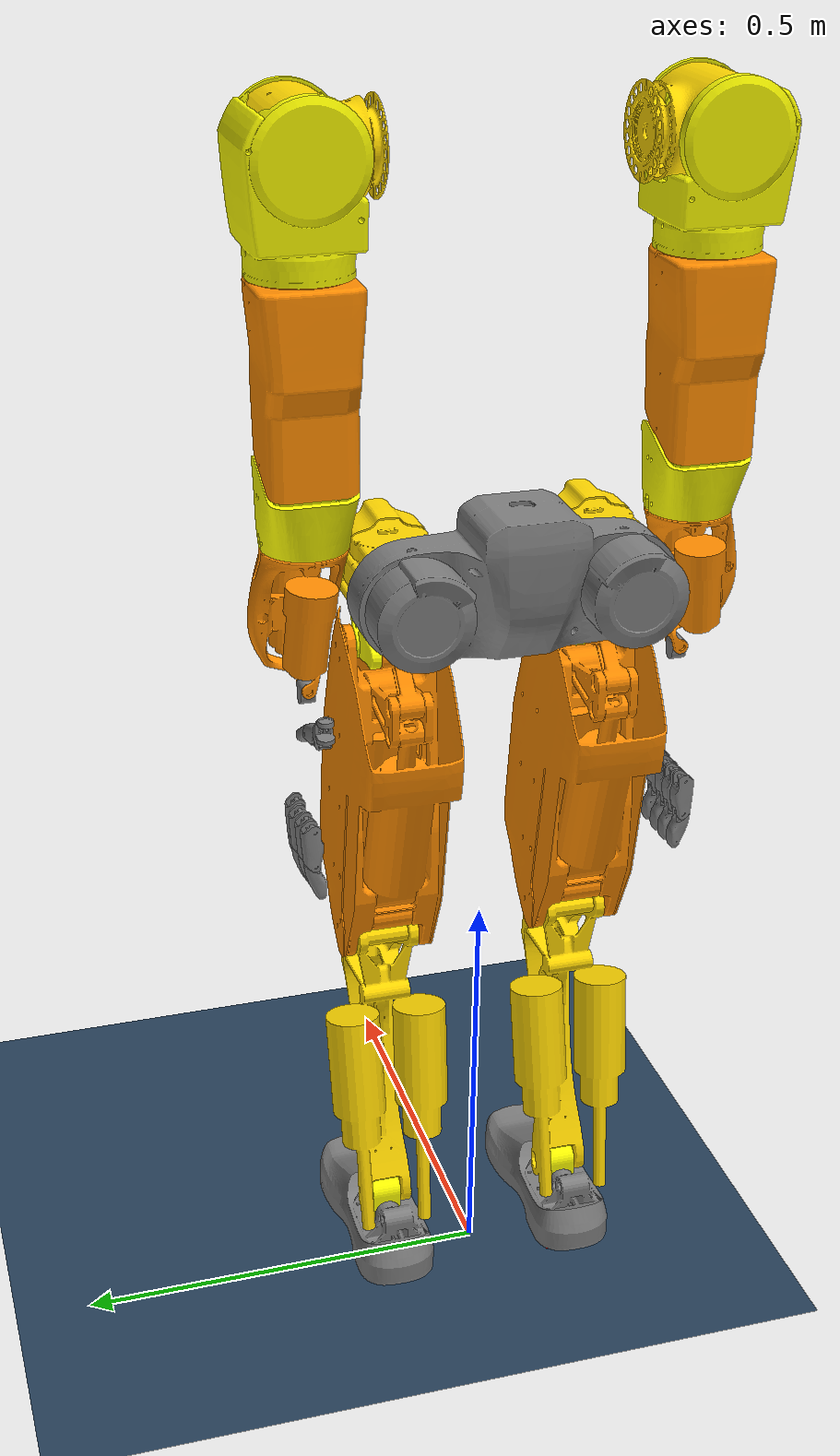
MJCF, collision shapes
<mujoco model="1230-URDF-version-fixed">
    <compiler angle="radian" meshdir="meshes/" eulerseq="zyx"/>
    <option timestep='0.001' iterations='50' solver='Newton' gravity='0 0 -9.81' integrator = 'RK4'>
    </option>
    <size njmax="500" nconmax="100" />

    <visual>
        <quality shadowsize='4096'/>
        <map znear='0.05'/>
    </visual>

    <default>
        <joint limited='true'/>
        <motor ctrllimited='true'/>
        <geom  condim='3' contype="1" conaffinity="15" solref='0.02 1' friction='0.9 0.9 0.9'/>
        <equality solref='0.02 1'/>
        <default class='visualgeom'>
            <geom material='visualgeom' condim='3' contype='1' conaffinity='15'/>
        </default>
        <default class='visualgeom2'>
            <geom material='visualgeom2' condim='3' contype='1' conaffinity='15'/>
        </default>
        <default class='obstacle'>
            <geom material='obstacle' condim='3' contype='1' conaffinity='15'/>
        </default>
        <default class='contact'>
            <geom material='contact' condim='3' contype='1' conaffinity='15'/>
        </default>

        <default class='neck_joint_param'>
            <joint  damping="0.01" frictionloss="0.01" armature="0.01"/>
        </default>

        <default class='waist_joint_param'>
            <joint  damping="2" frictionloss="2" armature="0.01"/>
        </default>

        <default class='leg_joint_param'>
            <joint  damping="0.01" frictionloss="0.01" armature="0.01"/>
        </default>

        <default class='arm_joint_param'>
            <joint  damping="1" frictionloss="1" armature="0.01"/>
        </default>

        <default class='finger_joint_param'>
            <joint  damping="0.00" frictionloss="0.00" armature="0.01"/>
        </default>
    </default>

    <asset>
        <texture type="skybox" builtin="gradient" rgb1="0.3 0.5 0.7" rgb2="0 0 0" width="512" height="512"/>
        <texture name="texplane" type="2d" builtin="checker" rgb1=".2 .3 .4" rgb2=".1 0.15 0.2"
            width="512" height="512" mark="cross" markrgb=".8 .8 .8"/>
        <texture name="texplane2" type="2d" builtin="checker" rgb1="1 0.3137 0.1843" rgb2="0.0 0.30196 0.38039"
            width="512" height="512" mark="cross" markrgb=".8 .8 .8"/>

        <material name="matplane" reflectance="0." texture="texplane" texrepeat="1 1" texuniform="true"/>
        <material name="matplane2" reflectance="0.1" texture="texplane2" texrepeat="1 1" texuniform="true"/>

        <material name='obstacle'  rgba='0.9 0.6 0.2 1'/>
        <material name='visualgeom'  rgba='0.5 0.9 0.2 1'/>
        <material name='visualgeom2'  rgba='0.5 0.9 0.2 1'/>
        <material name='contact'  rgba='0.5 0.9 0.2 1'/>

        <mesh name="base_link" file="base_link.STL" />
        <mesh name="left_hip_roll" file="left_hip_roll.STL" />
        <mesh name="left_hip_yaw" file="left_hip_yaw.STL" />
        <mesh name="left_hip_pitch" file="left_hip_pitch.STL" />
        <mesh name="left_knee_pitch" file="left_knee_pitch.STL" />
        <mesh name="left_ankle_pitch" file="left_ankle_pitch.STL" />
        <mesh name="left_ankle_roll" file="left_ankle_roll.STL" />
        <mesh name="right_hip_roll" file="right_hip_roll.STL" />
        <mesh name="right_hip_yaw" file="right_hip_yaw.STL" />
        <mesh name="right_hip_pitch" file="right_hip_pitch.STL" />
        <mesh name="right_knee_pitch" file="right_knee_pitch.STL" />
        <mesh name="right_ankle_pitch" file="right_ankle_pitch.STL" />
        <mesh name="right_ankle_roll" file="right_ankle_roll.STL" />
        <mesh name="waist_roll" file="waist_roll.STL" />
        <mesh name="waist_yaw" file="waist_yaw.STL" />
        <mesh name="head_yaw" file="head_yaw.STL" />
        <mesh name="head_pitch" file="head_pitch.STL" />
        <mesh name="left_shoulder_pitch" file="left_shoulder_pitch.STL" />
        <mesh name="left_shoulder_roll" file="left_shoulder_roll.STL" />
        <mesh name="left_shoulder_yaw" file="left_shoulder_yaw.STL" />
        <mesh name="left_elbow_pitch" file="left_elbow_pitch.STL" />
        <mesh name="left_elbow_yaw" file="left_elbow_yaw.STL" />
        <mesh name="left_wrist_pitch" file="left_wrist_pitch.STL" />
        <mesh name="left_wrist_yaw" file="left_wrist_yaw.STL" />
        <mesh name="left_thumb_1_roll" file="left_thumb_1_roll.STL" />
        <mesh name="left_thumb_2_pitch" file="left_thumb_2_pitch.STL" />
        <mesh name="left_thumb_3_pitch" file="left_thumb_3_pitch.STL" />
        <mesh name="left_index_finger_2_pitch" file="left_index_finger_2_pitch.STL" />
        <mesh name="left_index_finger_3_pitch" file="left_index_finger_3_pitch.STL" />
        <mesh name="left_middle_finger_2_pitch" file="left_middle_finger_2_pitch.STL" />
        <mesh name="left_middle_finger_3_pitch" file="left_middle_finger_3_pitch.STL" />
        <mesh name="left_ring_finger_2_pitch" file="left_ring_finger_2_pitch.STL" />
        <mesh name="left_ring_finger_3_pitch" file="left_ring_finger_3_pitch.STL" />
        <mesh name="left_little_finger_2_pitch" file="left_little_finger_2_pitch.STL" />
        <mesh name="left_little_finger_3_pitch" file="left_little_finger_3_pitch.STL" />
        <mesh name="right_shoulder_pitch" file="right_shoulder_pitch.STL" />
        <mesh name="right_shoulder_roll" file="right_shoulder_roll.STL" />
        <mesh name="right_shoulder_yaw" file="right_shoulder_yaw.STL" />
        <mesh name="right_elbow_pitch" file="right_elbow_pitch.STL" />
        <mesh name="right_elbow_yaw" file="right_elbow_yaw.STL" />
        <mesh name="right_wrist_pitch" file="right_wrist_pitch.STL" />
        <mesh name="right_wrist_yaw" file="right_wrist_yaw.STL" />
        <mesh name="right_thumb_1_roll" file="right_thumb_1_roll.STL" />
        <mesh name="right_thumb_2_pitch" file="right_thumb_2_pitch.STL" />
        <mesh name="right_thumb_3_pitch" file="right_thumb_3_pitch.STL" />
        <mesh name="right_index_finger_2_pitch" file="right_index_finger_2_pitch.STL" />
        <mesh name="right_index_finger_3_pitch" file="right_index_finger_3_pitch.STL" />
        <mesh name="right_middle_finger_2_pitch" file="right_middle_finger_2_pitch.STL" />
        <mesh name="right_middle_finger_3_pitch" file="right_middle_finger_3_pitch.STL" />
        <mesh name="right_ring_finger_2_pitch" file="right_ring_finger_2_pitch.STL" />
        <mesh name="right_ring_finger_3_pitch" file="right_ring_finger_3_pitch.STL" />
        <mesh name="right_little_finger_2_pitch" file="right_little_finger_2_pitch.STL" />
        <mesh name="right_little_finger_3_pitch" file="right_little_finger_3_pitch.STL" />
        <material name="white" rgba="1 1 1 1" />
        <material name="red" rgba="1 0 0 1" />
		<material name="gold" rgba="1 0.843 0 1" />
		<material name="orange" rgba="1 0.550 0 1" />
		<material name="blue" rgba="0 0 1 1" />
        <material name="grey" rgba="0.5 0.5 0.5 1" />
        <material name="yellow" rgba="1 1 0 1" />
        <material name="pink" rgba="0 1 1 1" />
        <texture name="skybox" type="skybox" builtin="gradient" rgb1="0.2 0.3 0.4" rgb2="0 0 0" width="1000" height="1000" mark="random" random="0.001" markrgb="1 1 1"/>
        <texture type="2d" name="groundplane" builtin="checker" mark="edge" rgb1="0.2 0.3 0.4" rgb2="0.1 0.2 0.3" markrgb="0.8 0.8 0.8" width="1000" height="1000"/>
        <material name="groundplane" texture="groundplane" texuniform="true" texrepeat="5 5" reflectance="0.2"/>

        <hfield name='hf0' nrow='200' ncol='200' size="10 5 0.2 .1"/>
    </asset>
    <worldbody>
        <!-- Add a light-->
        <light pos="0 0 10" dir="0 0 -1" directional="true"/>
        <light name="spotlight" mode="targetbodycom" target="Body" pos="0 -1 2"/>
        <!-- Add a floor-->
        <geom name="ground" type="plane" size="0 0 1" pos="0.001 0 0" quat="1 0 0 0" material="groundplane" condim="1" conaffinity='15'/>
        <!-- Handwrite 控制身体系原点离地的高度 1.02 -->
        <body name="Body" pos="0 0 1.00">
            <camera name="track" pos="0 -3 1" zaxis="0 -1 0.5" mode="track"/>
            <!-- Handwrite 需要修改-->
            <inertial pos="-0.092453 0.000001 -0.034538" mass="5.486" diaginertia="0.05914637 0.010903037 0.055941393"/>
            <geom type="mesh" group="1" mesh="base_link" material="grey" class="visualgeom"/>
            <site name="imu" size="0.01" pos="0 0 0"/>
            <freejoint/>
            <body name="left_hip_roll" pos="0 0.1175 -0.05">
                <inertial pos="-0.00547173 -3.64e-05 0.00444817" quat="0.593256 0.380985 0.369431 0.605326" mass="1.819" diaginertia="0.00259004 0.00250463 0.00221111" />
                <joint name="left_hip_roll" pos="0 0 0" axis="1 0 0" limited="true" range="-0.175 1.047" />
                <geom type="mesh"  contype="1" conaffinity="0" group="1" density="0" mesh="left_hip_roll" material="gold"  class="visualgeom" />
                <body name="left_hip_yaw" pos="0 0 0">
                    <inertial pos="-0.0124294 0 -0.063503" quat="0.368819 0.367925 -0.604137 0.603011" mass="0.663" diaginertia="0.00088487 0.000649271 0.00057433" />
                    <joint name="left_hip_yaw" pos="0 0 0" axis="0 0 1" limited="true" range="-1.047 1.047" />
                    <geom type="mesh" contype="1" conaffinity="0" group="1" density="0" mesh="left_hip_yaw" material="yellow" class="visualgeom"/>
                    <body name="left_hip_pitch" pos="0 0 -0.077">
                        <inertial pos="0.00518874 -0.00019093 -0.200708" quat="0.704693 -0.0534206 -0.0534064 0.70548" mass="10.4965" diaginertia="0.127525 0.106938 0.0370947" />
                        <joint name="left_hip_pitch" pos="0 0 0" axis="0 1 0" limited="true" range="-1.513 0.399" />
                        <geom type="mesh" contype="1" conaffinity="0" group="1" density="0" mesh="left_hip_pitch" material="orange" class="visualgeom"/>
                        <body name="left_knee_pitch" pos="0 0 -0.385">
                            <inertial pos="-0.00412565 0 -0.177064" quat="0.996414 7.50101e-06 0.0846168 7.44118e-07" mass="4.52604" diaginertia="0.0419559 0.0396506 0.0101455" />
                            <joint name="left_knee_pitch" pos="0 0 0" axis="0 1 0" limited="true" range="0 2.138" />
                            <geom type="mesh" contype="1" conaffinity="0" group="1" density="0" mesh="left_knee_pitch" material="gold" class="visualgeom"/>
                            <body name="left_ankle_pitch" pos="0 0 -0.385">
                                <inertial pos="0 0 -0.0115" mass="0.21031" diaginertia="7.78e-05 7.78e-05 4.68e-05" />
                                <joint name="left_ankle_pitch" pos="0 0 0" axis="0 1 0" limited="true" range="-1.047 0.349" />
                                <geom type="mesh" contype="1" conaffinity="0" group="1" density="0" mesh="left_ankle_pitch" material="yellow" class="visualgeom"/>
                                <body name="left_ankle_roll" pos="0 0 -0.023">
                                    <inertial pos="0.0149819 -2.21e-06 -0.0297583" quat="-4.9765e-05 0.74536 -6.84033e-08 0.666662" mass="1.25" diaginertia="0.00643686 0.00598442 0.00114085" />
                                    <joint name="left_ankle_roll" pos="0 0 0" axis="1 0 0" limited="true" range="-0.436 0.436" />
                                    <geom type="mesh" contype="1" conaffinity="0" group="1" density="0" mesh="left_ankle_roll" material="grey" class="contact"/>
                                    <geom size="0.005" pos="-0.075 0.035 -0.056" material="red" />
                                    <geom size="0.005" pos="-0.075 -0.035 -0.056" material="red" />
                                    <geom size="0.005" pos="0.16 0.034 -0.056" material="red" />
                                    <geom size="0.005" pos="0.16 -0.034 -0.056" material="red" />
                                </body>
                            </body>
                        </body>
                    </body>
                </body>
            </body>
            <body name="right_hip_roll" pos="0 -0.1175 -0.05">
                <inertial pos="-0.00547173 -3.64e-05 0.00444817" quat="0.593256 0.380985 0.369431 0.605326" mass="1.819" diaginertia="0.00259004 0.00250463 0.00221111" />
                <joint name="right_hip_roll" pos="0 0 0" axis="-1 0 0" limited="true" range="-0.175 1.047" />
                <geom type="mesh" contype="1" conaffinity="0" group="1" density="0" mesh="right_hip_roll" material="gold" class="visualgeom" />
                <body name="right_hip_yaw" pos="0 0 0">
                    <inertial pos="-0.0124294 0 -0.063503" quat="0.368819 0.367925 -0.604137 0.603011" mass="0.663" diaginertia="0.00088487 0.000649271 0.00057433" />
                    <joint name="right_hip_yaw" pos="0 0 0" axis="0 0 -1" limited="true" range="-1.047 1.047" />
                    <geom type="mesh" contype="1" conaffinity="0" group="1" density="0" mesh="right_hip_yaw" material="yellow" class="visualgeom"/>
                    <body name="right_hip_pitch" pos="0 0 -0.077">
                        <inertial pos="0.0051885 -0.00018849 -0.200716" quat="0.704704 -0.0533931 -0.0534117 0.70547" mass="10.4965" diaginertia="0.127531 0.106946 0.0370947" />
                        <joint name="right_hip_pitch" pos="0 0 0" axis="0 1 0" limited="true" range="-1.513 0.399" />
                        <geom type="mesh" contype="1" conaffinity="0" group="1" density="0" mesh="right_hip_pitch" material="orange" class="visualgeom"/>
                        <body name="right_knee_pitch" pos="0 0 -0.385">
                            <inertial pos="-0.00412565 0 -0.177064" quat="0.996414 7.50101e-06 0.0846168 7.44118e-07" mass="4.52604" diaginertia="0.0419559 0.0396506 0.0101455" />
                            <joint name="right_knee_pitch" pos="0 0 0" axis="0 1 0" limited="true" range="0 2.138" />
                            <geom type="mesh" contype="1" conaffinity="0" group="1" density="0" mesh="right_knee_pitch" material="gold" class="visualgeom"/>
                            <body name="right_ankle_pitch" pos="0 0 -0.385">
                                <inertial pos="0 0 -0.0115" mass="0.21031" diaginertia="7.78e-05 7.78e-05 4.68e-05" />
                                <joint name="right_ankle_pitch" pos="0 0 0" axis="0 1 0" limited="true" range="-1.047 0.349" />
                                <geom type="mesh" contype="1" conaffinity="0" group="1" density="0" mesh="right_ankle_pitch" material="yellow" class="visualgeom"/>
                                <body name="right_ankle_roll" pos="0 0 -0.023">
                                    <inertial pos="0.0237252 -2.54e-06 -0.0319424" quat="-4.9765e-05 0.74536 -6.84033e-08 0.666662" mass="1.25" diaginertia="0.00643686 0.00598442 0.00114085" />
                                    <joint name="right_ankle_roll" pos="0 0 0" axis="-1 0 0" limited="true" range="-0.436 0.436" />
                                    <geom type="mesh" contype="1" conaffinity="0" group="1" density="0" mesh="right_ankle_roll" material="grey" class="contact"/>
                                    <geom size="0.005" pos="-0.075 0.035 -0.056" material="red" />
                                    <geom size="0.005" pos="-0.075 -0.035 -0.056" material="red" />
                                    <geom size="0.005" pos="0.16 0.034 -0.056" material="red" />
                                    <geom size="0.005" pos="0.16 -0.034 -0.056" material="red" />
                                </body>
                            </body>
                        </body>
                    </body>
                </body>
            </body>
            <body name="waist_roll" pos="0 0 0">
                <inertial pos="-0.00347422 5.39e-06 -0.00848908" quat="0.362834 0.615106 0.586472 0.382159" mass="1.815" diaginertia="0.00219244 0.00219057 0.00192011" />
                <joint name="waist_roll" pos="0 0 0" axis="1 0 0" limited="true" range="-0.175 0.175" />
                <geom type="mesh" group="1" mesh="waist_roll" material="gold" class="visualgeom" contype="0" conaffinity="0"/>
                <body name="waist_yaw" pos="0 0 0.035">
                    <inertial pos="-0.0265499 -8.96e-06 0.271066" quat="0.999934 8.16316e-05 0.0114768 -8.35052e-05" mass="16.823" diaginertia="0.415255 0.36168 0.189103" />
                    <joint name="waist_yaw" pos="0 0 0" axis="0 0 1" limited="true" range="-0.785 0.785" />
                    <geom type="mesh" group="1" mesh="waist_yaw" material="orange" class="visualgeom" contype="0" conaffinity="0"/>
                    <body name="head_yaw" pos="-0.02 0 0.4505">
                        <inertial pos="0 0.00403628 0.0451782" quat="0.995796 -0.091604 0 0" mass="0.43221" diaginertia="0.00025942 0.000247335 0.000206025" />
                        <joint name="head_yaw" pos="0 0 0" axis="0 0 -1" limited="true" range="-0.785 0.785" />
                        <geom type="mesh" group="1" mesh="head_yaw" material="grey" class="visualgeom" contype="0" conaffinity="0"/>
                        <body name="head_pitch" pos="0 0 0.0485">
                            <inertial pos="0.0359011 -0.00097223 0.0895106" quat="0.451413 0.483607 0.680289 0.315528" mass="1.19339" diaginertia="0.00915494 0.00891947 0.00686874" />
                            <joint name="head_pitch" pos="0 0 0" axis="0 1 0" limited="true" range="-0.262 0.523" />
                            <geom type="mesh" group="1" mesh="head_pitch" material="gold" class="visualgeom" contype="0" conaffinity="0"/>
                        </body>
                    </body>
                    <body name="left_shoulder_pitch" pos="-0.02 0.1395 0.369">
                        <inertial pos="-0.00145511 0.0689072 0.00149868" quat="0.451645 0.524366 -0.519309 0.501374" mass="1.629" diaginertia="0.00229144 0.00218527 0.00182021" />
                        <joint name="left_shoulder_pitch" pos="0 0 0" axis="0 -1 0" limited="true" range="-1.58 3.16" />
                        <geom type="mesh" group="1" mesh="left_shoulder_pitch" material="gold" class="visualgeom"/>
                        <body name="left_shoulder_roll" pos="0 0.077 0">
                            <inertial pos="0.00260113 0.00244954 -0.0643519" quat="0.74971 -0.0579844 0.137232 0.64478" mass="1.587" diaginertia="0.00414794 0.00377513 0.00290483" />
                            <joint name="left_shoulder_roll" pos="0 0 0" axis="1 0 0" limited="true" range="0 1.58" />
                            <geom type="mesh" group="1" mesh="left_shoulder_roll" material="yellow" class="visualgeom"/>
                            <body name="left_shoulder_yaw" pos="0 0 -0.1185">
                                <inertial pos="-0.00603131 0 -0.0876439" quat="0.999102 -3.18364e-05 0.0423598 -0.00128592" mass="1.25" diaginertia="0.0042983 0.00425529 0.00158429" />
                                <joint name="left_shoulder_yaw" pos="0 0 0" axis="0 0 1" limited="true" range="-1.58 1.58" />
                                <geom type="mesh" group="1" mesh="left_shoulder_yaw" material="orange" class="visualgeom"/>
                                <body name="left_elbow_pitch" pos="0.007 0 -0.2105">
                                    <inertial pos="-0.01558 4.95e-06 -0.0364362" quat="0.999049 6.82104e-06 0.0435989 0.000560657" mass="1.064" diaginertia="0.0012488 0.00114059 0.000872" />
                                    <joint name="left_elbow_pitch" pos="0 0 0" axis="0 -1 0" limited="true" range="0 2.27" />
                                    <geom type="mesh" group="1" mesh="left_elbow_pitch" material="yellow" class="visualgeom"/>
                                    <body name="left_elbow_yaw" pos="-0.019 0 -0.0779">
                                        <inertial pos="0.0034803 0.00540729 -0.0629133" quat="0.703092 0.0460981 -0.0225819 0.709244" mass="0.969" diaginertia="0.00225921 0.00161309 0.00130656" />
                                        <joint name="left_elbow_yaw" pos="0 0 0" axis="0 0 1" limited="true" range="-2.1 2.1" />
                                        <geom type="mesh" group="1" mesh="left_elbow_yaw" material="orange" class="visualgeom"/>
                                        <body name="left_wrist_pitch" pos="0.004 0 -0.158">
                                            <inertial pos="0 0 -0.00435545" quat="0.707107 0 0 0.707107" mass="0.023" diaginertia="1.82e-06 1.6e-06 1.22e-06" />
                                            <joint name="left_wrist_pitch" pos="0 0 0" axis="1 0 0" limited="true" range="-1.31 0.96" />
                                            <geom type="mesh" group="1" mesh="left_wrist_pitch" material="grey" class="visualgeom"/>
                                            <body name="left_wrist_yaw" pos="0 0 -0.01">
                                                <inertial pos="0.00167328 -0.00282893 -0.0846354" quat="0.736718 0.0273065 -0.025875 0.675153" mass="0.847" diaginertia="0.00227019 0.00195183 0.00074904" />
                                                <joint name="left_wrist_yaw" pos="0 0 0" axis="0 -1 0" limited="true" range="-0.7 0.35" />
                                                <geom type="mesh" group="1" mesh="left_wrist_yaw" material="gold" class="visualgeom" contype="0" conaffinity="0"/>
                                                <body name="left_thumb_1_roll" pos="0.035543 -0.030472 -0.066011" quat="-2.59734e-06 -0.707105 -0.707108 -2.59735e-06">
                                                    <inertial pos="-0.00037223 0.0112416 0.00678232" quat="0.95663 -0.290369 -0.0107728 -0.020699" mass="0.025" diaginertia="5.09197e-06 4.24361e-06 2.51442e-06" />
                                                    <geom type="mesh" group="1" mesh="left_thumb_1_roll" material="grey" class="visualgeom"/>
                                                    <body name="left_thumb_2_pitch" pos="0 0.024 0.01915" quat="0.499998 -0.5 0.500002 -0.5">
                                                        <inertial pos="-0.0195297 -0.00665716 0" quat="0.392605 0.392605 0.5881 0.5881" mass="0.031" diaginertia="6.73107e-06 6.6e-06 2.43893e-06" />
                                                        <geom type="mesh" group="1" mesh="left_thumb_2_pitch" material="grey" class="visualgeom"/>
                                                        <body name="left_thumb_3_pitch" pos="-0.039467 -0.014365 0">
                                                            <inertial pos="-0.0226518 -0.0106249 0" quat="0.347427 0.347427 0.615869 0.615869" mass="0.0226" diaginertia="4.63474e-06 4.55e-06 1.06526e-06" />
                                                            <geom type="mesh" group="1" mesh="left_thumb_3_pitch" material="grey" class="visualgeom"/>
                                                        </body>
                                                    </body>
                                                </body>
                                                <body name="left_index_finger_2_pitch" pos="0.035543 0.0035478 -0.1503" quat="0.499998 0.5 0.500002 0.5">
                                                    <inertial pos="0.00042387 -0.0206288 0" quat="0.706933 0.706933 -0.0156893 -0.0156893" mass="0.0308" diaginertia="6.72844e-06 6.6e-06 2.44156e-06" />
                                                    <geom type="mesh" group="1" mesh="left_index_finger_2_pitch" material="grey" class="visualgeom"/>
                                                    <body name="left_index_finger_3_pitch" pos="0 -0.042 0">
                                                        <inertial pos="-0.00240456 -0.0215989 1.17e-06" quat="0.699664 0.699664 -0.102323 -0.102323" mass="0.0189" diaginertia="3.16129e-06 3.13e-06 8.28713e-07" />
                                                        <geom type="mesh" group="1" mesh="left_index_finger_3_pitch" material="grey" class="visualgeom"/>
                                                    </body>
                                                </body>
                                                <body name="left_middle_finger_2_pitch" pos="0.012043 0.0050473 -0.1523" quat="0.499998 0.5 0.500002 0.5">
                                                    <inertial pos="0.00042387 -0.0206288 0" quat="0.706933 0.706933 -0.0156893 -0.0156893" mass="0.0308" diaginertia="6.72844e-06 6.6e-06 2.44156e-06" />
                                                    <geom type="mesh" group="1" mesh="left_middle_finger_2_pitch" material="grey" class="visualgeom"/>
                                                    <body name="left_middle_finger_3_pitch" pos="0 -0.042 0">
                                                        <inertial pos="-0.00240456 -0.0215989 1.17e-06" quat="0.699664 0.699664 -0.102323 -0.102323" mass="0.0189" diaginertia="3.16129e-06 3.13e-06 8.28713e-07" />
                                                        <geom type="mesh" group="1" mesh="left_middle_finger_3_pitch" material="grey" class="visualgeom"/>
                                                    </body>
                                                </body>
                                                <body name="left_ring_finger_2_pitch" pos="-0.011289 0.0035462 -0.14993" quat="0.491173 0.508623 0.508676 0.491224">
                                                    <inertial pos="0.00042387 -0.0206288 0" quat="0.706933 0.706933 -0.0156893 -0.0156893" mass="0.0308" diaginertia="6.72844e-06 6.6e-06 2.44156e-06" />
                                                    <geom type="mesh" group="1" mesh="left_ring_finger_2_pitch" material="grey" class="visualgeom"/>
                                                    <body name="left_ring_finger_3_pitch" pos="0 -0.042 0">
                                                        <inertial pos="-0.00240456 -0.0215989 1.17e-06" quat="0.699664 0.699664 -0.102323 -0.102323" mass="0.0189" diaginertia="3.16129e-06 3.13e-06 8.28713e-07" />
                                                        <geom type="mesh" group="1" mesh="left_ring_finger_3_pitch" material="grey" class="visualgeom"/>
                                                    </body>
                                                </body>
                                                <body name="left_little_finger_2_pitch" pos="-0.034634 0.0032932 -0.14725" quat="0.482247 0.517142 0.517144 0.482249">
                                                    <inertial pos="0.00042387 -0.0206288 0" quat="0.706933 0.706933 -0.0156893 -0.0156893" mass="0.0308" diaginertia="6.72844e-06 6.6e-06 2.44156e-06" />
                                                    <geom type="mesh" group="1" mesh="left_little_finger_2_pitch" material="grey" class="visualgeom"/>
                                                    <body name="left_little_finger_3_pitch" pos="0 -0.042 0">
                                                        <inertial pos="-0.00240456 -0.0215989 1.17e-06" quat="0.699664 0.699664 -0.102323 -0.102323" mass="0.0189" diaginertia="3.16129e-06 3.13e-06 8.28713e-07" />
                                                        <geom type="mesh" group="1" mesh="left_little_finger_3_pitch" material="grey" class="visualgeom"/>
                                                    </body>
                                                </body>
                                            </body>
                                        </body>
                                    </body>
                                </body>
                            </body>
                        </body>
                    </body>
                    <body name="right_shoulder_pitch" pos="-0.02 -0.1395 0.369">
                        <inertial pos="-0.00145517 -0.0689072 0.00149851" quat="0.524415 0.451692 -0.501332 0.519259" mass="1.629" diaginertia="0.00229145 0.00218528 0.0018202" />
                        <joint name="right_shoulder_pitch" pos="0 0 0" axis="0 -1 0" limited="true" range="-1.58 3.16" />
                        <geom type="mesh" group="1" mesh="right_shoulder_pitch" material="gold" class="visualgeom"/>
                        <body name="right_shoulder_roll" pos="0 -0.077 0">
                            <inertial pos="0.00260067 -0.00245175 -0.0643512" quat="0.64471 0.137203 -0.0579857 0.749775" mass="1.587" diaginertia="0.00414798 0.00377502 0.0029048" />
                            <joint name="right_shoulder_roll" pos="0 0 0" axis="-1 0 0" limited="true" range="0 1.58" />
                            <geom type="mesh" group="1" mesh="right_shoulder_roll" material="yellow" class="visualgeom"/>
                            <body name="right_shoulder_yaw" pos="0 0 -0.1185">
                                <inertial pos="-0.00603131 0 -0.0876439" quat="0.999102 -3.18364e-05 0.0423598 -0.00128592" mass="1.25" diaginertia="0.0042983 0.00425529 0.00158429" />
                                <joint name="right_shoulder_yaw" pos="0 0 0" axis="0 0 -1" limited="true" range="-1.58 1.58" />
                                <geom type="mesh" group="1" mesh="right_shoulder_yaw" material="orange" class="visualgeom"/>
                                <body name="right_elbow_pitch" pos="0.007 0 -0.2105">
                                    <inertial pos="-0.01558 4.96e-06 -0.0364362" quat="0.999049 6.82104e-06 0.0435989 0.000560657" mass="1.064" diaginertia="0.0012488 0.00114059 0.000872" />
                                    <joint name="right_elbow_pitch" pos="0 0 0" axis="0 -1 0" limited="true" range="0 2.27" />
                                    <geom type="mesh" group="1" mesh="right_elbow_pitch" material="yellow" class="visualgeom"/>
                                    <body name="right_elbow_yaw" pos="-0.019 0 -0.072">
                                        <inertial pos="0.00347489 -0.00540731 -0.0688141" quat="0.709125 -0.0222007 0.0464744 0.703199" mass="0.969" diaginertia="0.00225935 0.00161322 0.00130662" />
                                        <joint name="right_elbow_yaw" pos="0 0 0" axis="0 0 -1" limited="true" range="-2.1 2.1" />
                                        <geom type="mesh" group="1" mesh="right_elbow_yaw" material="orange" class="visualgeom"/>
                                        <body name="right_wrist_pitch" pos="0.004 0 -0.1639">
                                            <inertial pos="0 0 -0.00435545" quat="0.707107 0 0 0.707107" mass="0.023" diaginertia="1.82e-06 1.6e-06 1.22e-06" />
                                            <joint name="right_wrist_pitch" pos="0 0 0" axis="-1 0 0" limited="true" range="-1.31 0.96" />
                                            <geom type="mesh" group="1" mesh="right_wrist_pitch" material="grey" class="visualgeom"/>
                                            <body name="right_wrist_yaw" pos="0 0 -0.01">
                                                <inertial pos="0.00170558 0.00283496 -0.0846459" quat="0.674926 -0.025937 0.027196 0.736928" mass="0.847" diaginertia="0.00226967 0.00195094 0.000749261" />
                                                <joint name="right_wrist_yaw" pos="0 0 0" axis="0 -1 0" limited="true" range="-0.7 0.35" />
                                                <geom type="mesh" group="1" mesh="right_wrist_yaw" material="gold" class="visualgeom" contype="0" conaffinity="0"/>
                                                <body name="right_thumb_1_roll" pos="0.035543 0.030472 -0.066011" quat="-2.59734e-06 -0.707105 -0.707108 -2.59735e-06">
                                                    <inertial pos="0.00037224 0.0112417 0.00678231" quat="0.95663 -0.290369 0.0107728 0.020699" mass="0.025" diaginertia="5.09197e-06 4.24361e-06 2.51442e-06" />
                                                    <geom type="mesh" group="1" mesh="right_thumb_1_roll" material="grey" class="visualgeom"/>
                                                    <body name="right_thumb_2_pitch" pos="0 0.024 0.01915" quat="0.499998 0.5 -0.500002 -0.5">
                                                        <inertial pos="-0.0195297 0.00665717 0" quat="0.5881 0.5881 0.392605 0.392605" mass="0.031" diaginertia="6.73107e-06 6.6e-06 2.43893e-06" />
                                                        <geom type="mesh" group="1" mesh="right_thumb_2_pitch" material="grey" class="visualgeom"/>
                                                        <body name="right_thumb_3_pitch" pos="-0.039467 0.014365 0">
                                                            <inertial pos="-0.0226518 0.0106249 0" quat="0.615869 0.615869 0.347427 0.347427" mass="0.0226" diaginertia="4.63474e-06 4.55e-06 1.06526e-06" />
                                                            <geom type="mesh" group="1" mesh="right_thumb_3_pitch" material="grey" class="visualgeom"/>
                                                        </body>
                                                    </body>
                                                </body>
                                                <body name="right_index_finger_2_pitch" pos="0.035543 -0.0035478 -0.1503" quat="0.499998 -0.5 -0.500002 0.5">
                                                    <inertial pos="-0.000424 0.020629 0" quat="0.706933 0.706933 -0.0156893 -0.0156893" mass="0.0308" diaginertia="6.72844e-06 6.6e-06 2.44156e-06" />
                                                    <geom type="mesh" group="1" mesh="right_index_finger_2_pitch" material="grey" class="visualgeom"/>
                                                    <body name="right_index_finger_3_pitch" pos="0 0.042 0">
                                                        <inertial pos="0.002405 0.021599 0" quat="0.699664 0.699664 -0.102323 -0.102323" mass="0.0189" diaginertia="3.16129e-06 3.13e-06 8.28713e-07" />
                                                        <geom type="mesh" group="1" mesh="right_index_finger_3_pitch" material="grey" class="visualgeom"/>
                                                    </body>
                                                </body>
                                                <body name="right_middle_finger_2_pitch" pos="0.012043 -0.0050472 -0.1523" quat="0.499998 -0.5 -0.500002 0.5">
                                                    <inertial pos="-0.000424 0.020629 0" quat="0.706933 0.706933 -0.0156893 -0.0156893" mass="0.0308" diaginertia="6.72844e-06 6.6e-06 2.44156e-06" />
                                                    <geom type="mesh" group="1" mesh="right_middle_finger_2_pitch" material="grey" class="visualgeom"/>
                                                    <body name="right_middle_finger_3_pitch" pos="0 0.042 0">
                                                        <inertial pos="0.002405 0.021599 0" quat="0.699664 0.699664 -0.102323 -0.102323" mass="0.0189" diaginertia="3.16129e-06 3.13e-06 8.28713e-07" />
                                                        <geom type="mesh" group="1" mesh="right_middle_finger_3_pitch" material="grey" class="visualgeom"/>
                                                    </body>
                                                </body>
                                                <body name="right_ring_finger_2_pitch" pos="-0.011289 -0.0035462 -0.14993" quat="0.508672 -0.491224 -0.491177 0.508623">
                                                    <inertial pos="-0.000424 0.020629 0" quat="0.706933 0.706933 -0.0156893 -0.0156893" mass="0.0308" diaginertia="6.72844e-06 6.6e-06 2.44156e-06" />
                                                    <geom type="mesh" group="1" mesh="right_ring_finger_2_pitch" material="grey" class="visualgeom"/>
                                                    <body name="right_ring_finger_3_pitch" pos="0 0.042 0">
                                                        <inertial pos="0.002405 0.021599 0" quat="0.699664 0.699664 -0.102323 -0.102323" mass="0.0189" diaginertia="3.16129e-06 3.13e-06 8.28713e-07" />
                                                        <geom type="mesh" group="1" mesh="right_ring_finger_3_pitch" material="grey" class="visualgeom"/>
                                                    </body>
                                                </body>
                                                <body name="right_little_finger_2_pitch" pos="-0.034634 -0.0032932 -0.14725" quat="0.51714 -0.482249 -0.482251 0.517142">
                                                    <inertial pos="-0.000424 0.020629 0" quat="0.706933 0.706933 -0.0156893 -0.0156893" mass="0.0308" diaginertia="6.72844e-06 6.6e-06 2.44156e-06" />
                                                    <geom type="mesh" group="1" mesh="right_little_finger_2_pitch" material="grey" class="visualgeom"/>
                                                    <body name="right_little_finger_3_pitch" pos="0 0.042 0">
                                                        <inertial pos="0.002405 0.021599 0" quat="0.699664 0.699664 -0.102323 -0.102323" mass="0.0189" diaginertia="3.16129e-06 3.13e-06 8.28713e-07" />
                                                        <geom type="mesh" group="1" mesh="right_little_finger_3_pitch" material="grey" class="visualgeom"/>
                                                    </body>
                                                </body>
                                            </body>
                                        </body>
                                    </body>
                                </body>
                            </body>
                        </body>
                    </body>
                </body>
            </body>
        </body>
    </worldbody>

    <actuator>
        <motor name="motor_left_hip_roll" joint="left_hip_roll" gear="1" ctrllimited="true" ctrlrange="-300 300" />
        <motor name="motor_left_hip_yaw" joint="left_hip_yaw" gear="1" ctrllimited="true" ctrlrange="-300 300" />
        <motor name="motor_left_hip_pitch" joint="left_hip_pitch" gear="1" ctrllimited="true" ctrlrange="-300 300" />
        <motor name="motor_left_knee_pitch" joint="left_knee_pitch" gear="1" ctrllimited="true" ctrlrange="-300 300" />
        <motor name="motor_left_ankle_pitch" joint="left_ankle_pitch" gear="1" ctrllimited="true" ctrlrange="-300 300" />
        <motor name="motor_left_ankle_roll" joint="left_ankle_roll" gear="1" ctrllimited="true" ctrlrange="-300 300" />
		<motor name="motor_right_hip_roll" joint="right_hip_roll" gear="1" ctrllimited="true" ctrlrange="-300 300" />
        <motor name="motor_right_hip_yaw" joint="right_hip_yaw" gear="1" ctrllimited="true" ctrlrange="-300 300" />
        <motor name="motor_right_hip_pitch" joint="right_hip_pitch" gear="1" ctrllimited="true" ctrlrange="-300 300" />
        <motor name="motor_right_knee_pitch" joint="right_knee_pitch" gear="1" ctrllimited="true" ctrlrange="-300 300" />
        <motor name="motor_right_ankle_pitch" joint="right_ankle_pitch" gear="1" ctrllimited="true" ctrlrange="-300 300" />
        <motor name="motor_right_ankle_roll" joint="right_ankle_roll" gear="1" ctrllimited="true" ctrlrange="-300 300" />

        <motor name="motor_waist_roll" joint="waist_roll" gear="1" ctrllimited="true" ctrlrange="-300 300" />
        <motor name="motor_waist_yaw" joint="waist_yaw" gear="1" ctrllimited="true" ctrlrange="-300 300" />
        <motor name="motor_head_yaw" joint="head_yaw" gear="1" ctrllimited="true" ctrlrange="-300 300" />
        <motor name="motor_head_pitch" joint="head_pitch" gear="1" ctrllimited="true" ctrlrange="-300 300" />

        <motor name="motor_left_shoulder_pitch" joint="left_shoulder_pitch" gear="1" ctrllimited="true" ctrlrange="-300 300" />
		<motor name="motor_left_shoulder_roll" joint="left_shoulder_roll" gear="1" ctrllimited="true" ctrlrange="-300 300" />
        <motor name="motor_left_shoulder_yaw" joint="left_shoulder_yaw" gear="1" ctrllimited="true" ctrlrange="-300 300" />
        <motor name="motor_left_elbow_pitch" joint="left_elbow_pitch" gear="1" ctrllimited="true" ctrlrange="-300 300" />
        <motor name="motor_left_elbow_yaw" joint="left_elbow_yaw" gear="1" ctrllimited="true" ctrlrange="-300 300" />
        <motor name="motor_left_wrist_pitch" joint="left_wrist_pitch" gear="1" ctrllimited="true" ctrlrange="-300 300" />
        <motor name="motor_left_wrist_yaw" joint="left_wrist_yaw" gear="1" ctrllimited="true" ctrlrange="-300 300" />

        <motor name="motor_right_shoulder_pitch" joint="right_shoulder_pitch" gear="1" ctrllimited="true" ctrlrange="-300 300" />
		<motor name="motor_right_shoulder_roll" joint="right_shoulder_roll" gear="1" ctrllimited="true" ctrlrange="-300 300" />
        <motor name="motor_right_shoulder_yaw" joint="right_shoulder_yaw" gear="1" ctrllimited="true" ctrlrange="-300 300" />
        <motor name="motor_right_elbow_pitch" joint="right_elbow_pitch" gear="1" ctrllimited="true" ctrlrange="-300 300" />
        <motor name="motor_right_elbow_yaw" joint="right_elbow_yaw" gear="1" ctrllimited="true" ctrlrange="-300 300" />
        <motor name="motor_right_wrist_pitch" joint="right_wrist_pitch" gear="1" ctrllimited="true" ctrlrange="-300 300" />
        <motor name="motor_right_wrist_yaw" joint="right_wrist_yaw" gear="1" ctrllimited="true" ctrlrange="-300 300" />
    </actuator>

    <sensor>
        <actuatorpos name="left_hip_roll_Pos_p" actuator="motor_left_hip_yaw" user='13'/>
        <actuatorpos name="left_hip_yaw_Pos_p" actuator="motor_left_hip_yaw" user='13'/>
        <actuatorpos name="left_hip_pitch_Pos_p" actuator="motor_left_hip_pitch" user='13'/>
        <actuatorpos name="left_knee_pitch_Pos_p" actuator="motor_left_knee_pitch" user='13'/>
        <actuatorpos name="left_ankle_pitch_Pos_p" actuator="motor_left_ankle_pitch" user='13'/>
        <actuatorpos name="left_ankle_roll_Pos_p" actuator="motor_left_ankle_roll" user='13'/>
        <actuatorpos name="right_hip_roll_Pos_p" actuator="motor_right_hip_roll" user='13'/>
        <actuatorpos name="right_hip_yaw_Pos_p" actuator="motor_right_hip_yaw" user='13'/>
        <actuatorpos name="right_hip_pitch_Pos_p" actuator="motor_right_hip_pitch" user='13'/>
        <actuatorpos name="right_knee_pitch_Pos_p" actuator="motor_right_knee_pitch" user='13'/>
        <actuatorpos name="right_ankle_pitch_Pos_p" actuator="motor_right_ankle_pitch" user='13'/>
        <actuatorpos name="right_ankle_roll_Pos_p" actuator="motor_right_ankle_roll" user='13'/>
        <actuatorpos name="waist_roll_Pos_p" actuator="motor_waist_roll" user='13'/>
        <actuatorpos name="waist_yaw_Pos_p" actuator="motor_waist_yaw" user='13'/>
        <actuatorpos name="head_yaw_Pos_p" actuator="motor_head_yaw" user='13'/>
        <actuatorpos name="head_pitch_Pos_p" actuator="motor_head_pitch" user='13'/>
        <actuatorpos name="left_shoulder_pitch_Pos_p" actuator="motor_left_shoulder_pitch" user='13'/>
        <actuatorpos name="left_shoulder_roll_Pos_p" actuator="motor_left_shoulder_roll" user='13'/>
        <actuatorpos name="left_shoulder_yaw_Pos_p" actuator="motor_left_shoulder_yaw" user='13'/>
        <actuatorpos name="left_elbow_pitch_Pos_p" actuator="motor_left_elbow_pitch" user='13'/>
        <actuatorpos name="left_elbow_yaw_Pos_p" actuator="motor_left_elbow_yaw" user='13'/>
        <actuatorpos name="left_wrist_pitch_Pos_p" actuator="motor_left_wrist_pitch" user='13'/>
        <actuatorpos name="left_wrist_yaw_Pos_p" actuator="motor_left_wrist_yaw" user='13'/>
        <actuatorpos name="right_shoulder_pitch_Pos_p" actuator="motor_right_shoulder_pitch" user='13'/>
        <actuatorpos name="right_shoulder_roll_Pos_p" actuator="motor_right_shoulder_roll" user='13'/>
        <actuatorpos name="right_shoulder_yaw_Pos_p" actuator="motor_right_shoulder_yaw" user='13'/>
        <actuatorpos name="right_elbow_pitch_Pos_p" actuator="motor_right_elbow_pitch" user='13'/>
        <actuatorpos name="right_elbow_yaw_Pos_p" actuator="motor_right_elbow_yaw" user='13'/>
        <actuatorpos name="right_wrist_pitch_Pos_p" actuator="motor_right_wrist_pitch" user='13'/>
        <actuatorpos name="right_wrist_yaw_Pos_p" actuator="motor_right_wrist_yaw" user='13'/>

        <actuatorvel name="left_hip_roll_Pos_v" actuator="motor_left_hip_yaw" user='13'/>
        <actuatorvel name="left_hip_yaw_Pos_v" actuator="motor_left_hip_yaw" user='13'/>
        <actuatorvel name="left_hip_pitch_Pos_v" actuator="motor_left_hip_pitch" user='13'/>
        <actuatorvel name="left_knee_pitch_Pos_v" actuator="motor_left_knee_pitch" user='13'/>
        <actuatorvel name="left_ankle_pitch_Pos_v" actuator="motor_left_ankle_pitch" user='13'/>
        <actuatorvel name="left_ankle_roll_Pos_v" actuator="motor_left_ankle_roll" user='13'/>
        <actuatorvel name="right_hip_roll_Pos_v" actuator="motor_right_hip_roll" user='13'/>
        <actuatorvel name="right_hip_yaw_Pos_v" actuator="motor_right_hip_yaw" user='13'/>
        <actuatorvel name="right_hip_pitch_Pos_v" actuator="motor_right_hip_pitch" user='13'/>
        <actuatorvel name="right_knee_pitch_Pos_v" actuator="motor_right_knee_pitch" user='13'/>
        <actuatorvel name="right_ankle_pitch_Pos_v" actuator="motor_right_ankle_pitch" user='13'/>
        <actuatorvel name="right_ankle_roll_Pos_v" actuator="motor_right_ankle_roll" user='13'/>
        <actuatorvel name="waist_roll_Pos_v" actuator="motor_waist_roll" user='13'/>
        <actuatorvel name="waist_yaw_Pos_v" actuator="motor_waist_yaw" user='13'/>
        <actuatorvel name="head_yaw_Pos_v" actuator="motor_head_yaw" user='13'/>
        <actuatorvel name="head_pitch_Pos_v" actuator="motor_head_pitch" user='13'/>
        <actuatorpos name="left_shoulder_pitch_Pos_v" actuator="motor_left_shoulder_pitch" user='13'/>
        <actuatorpos name="left_shoulder_roll_Pos_v" actuator="motor_left_shoulder_roll" user='13'/>
        <actuatorpos name="left_shoulder_yaw_Pos_v" actuator="motor_left_shoulder_yaw" user='13'/>
        <actuatorpos name="left_elbow_pitch_Pos_v" actuator="motor_left_elbow_pitch" user='13'/>
        <actuatorpos name="left_elbow_yaw_Pos_v" actuator="motor_left_elbow_yaw" user='13'/>
        <actuatorpos name="left_wrist_pitch_Pos_v" actuator="motor_left_wrist_pitch" user='13'/>
        <actuatorpos name="left_wrist_yaw_Pos_v" actuator="motor_left_wrist_yaw" user='13'/>
        <actuatorpos name="right_shoulder_pitch_Pos_v" actuator="motor_right_shoulder_pitch" user='13'/>
        <actuatorpos name="right_shoulder_roll_Pos_v" actuator="motor_right_shoulder_roll" user='13'/>
        <actuatorpos name="right_shoulder_yaw_Pos_v" actuator="motor_right_shoulder_yaw" user='13'/>
        <actuatorpos name="right_elbow_pitch_Pos_v" actuator="motor_right_elbow_pitch" user='13'/>
        <actuatorpos name="right_elbow_yaw_Pos_v" actuator="motor_right_elbow_yaw" user='13'/>
        <actuatorpos name="right_wrist_pitch_Pos_v" actuator="motor_right_wrist_pitch" user='13'/>
        <actuatorpos name="right_wrist_yaw_Pos_v" actuator="motor_right_wrist_yaw" user='13'/>

        <actuatorfrc name="left_hip_roll_Pos_f" actuator="motor_left_hip_yaw" user='13' noise='1e-3'/>
        <actuatorfrc name="left_hip_yaw_Pos_f" actuator="motor_left_hip_yaw" user='13' noise='1e-3'/>
        <actuatorfrc name="left_hip_pitch_Pos_f" actuator="motor_left_hip_pitch" user='13' noise='1e-3'/>
        <actuatorfrc name="left_knee_pitch_Pos_f" actuator="motor_left_knee_pitch" user='13' noise='1e-3'/>
        <actuatorfrc name="left_ankle_pitch_Pos_f" actuator="motor_left_ankle_pitch" user='13' noise='1e-3'/>
        <actuatorfrc name="left_ankle_roll_Pos_f" actuator="motor_left_ankle_roll" user='13' noise='1e-3'/>
        <actuatorfrc name="right_hip_roll_Pos_f" actuator="motor_right_hip_roll" user='13' noise='1e-3'/>
        <actuatorfrc name="right_hip_yaw_Pos_f" actuator="motor_right_hip_yaw" user='13' noise='1e-3'/>
        <actuatorfrc name="right_hip_pitch_Pos_f" actuator="motor_right_hip_pitch" user='13' noise='1e-3'/>
        <actuatorfrc name="right_knee_pitch_Pos_f" actuator="motor_right_knee_pitch" user='13' noise='1e-3'/>
        <actuatorfrc name="right_ankle_pitch_Pos_f" actuator="motor_right_ankle_pitch" user='13' noise='1e-3'/>
        <actuatorfrc name="right_ankle_roll_Pos_f" actuator="motor_right_ankle_roll" user='13' noise='1e-3'/>
        <actuatorfrc name="waist_roll_Pos_f" actuator="motor_waist_roll" user='13' noise='1e-3'/>
        <actuatorfrc name="waist_yaw_Pos_f" actuator="motor_waist_yaw" user='13' noise='1e-3'/>
        <actuatorfrc name="head_yaw_Pos_f" actuator="motor_head_yaw" user='13' noise='1e-3'/>
        <actuatorfrc name="head_pitch_Pos_f" actuator="motor_head_pitch" user='13' noise='1e-3'/>
        <actuatorpos name="left_shoulder_pitch_Pos_f" actuator="motor_left_shoulder_pitch" user='13' noise='1e-3'/>
        <actuatorpos name="left_shoulder_roll_Pos_f" actuator="motor_left_shoulder_roll" user='13' noise='1e-3'/>
        <actuatorpos name="left_shoulder_yaw_Pos_f" actuator="motor_left_shoulder_yaw" user='13' noise='1e-3'/>
        <actuatorpos name="left_elbow_pitch_Pos_f" actuator="motor_left_elbow_pitch" user='13' noise='1e-3'/>
        <actuatorpos name="left_elbow_yaw_Pos_f" actuator="motor_left_elbow_yaw" user='13' noise='1e-3'/>
        <actuatorpos name="left_wrist_pitch_Pos_f" actuator="motor_left_wrist_pitch" user='13' noise='1e-3'/>
        <actuatorpos name="left_wrist_yaw_Pos_f" actuator="motor_left_wrist_yaw" user='13' noise='1e-3'/>
        <actuatorpos name="right_shoulder_pitch_Pos_f" actuator="motor_right_shoulder_pitch" user='13' noise='1e-3'/>
        <actuatorpos name="right_shoulder_roll_Pos_f" actuator="motor_right_shoulder_roll" user='13' noise='1e-3'/>
        <actuatorpos name="right_shoulder_yaw_Pos_f" actuator="motor_right_shoulder_yaw" user='13' noise='1e-3'/>
        <actuatorpos name="right_elbow_pitch_Pos_f" actuator="motor_right_elbow_pitch" user='13' noise='1e-3'/>
        <actuatorpos name="right_elbow_yaw_Pos_f" actuator="motor_right_elbow_yaw" user='13' noise='1e-3'/>
        <actuatorpos name="right_wrist_pitch_Pos_f" actuator="motor_right_wrist_pitch" user='13' noise='1e-3'/>
        <actuatorpos name="right_wrist_yaw_Pos_f" actuator="motor_right_wrist_yaw" user='13' noise='1e-3'/>

        <framequat     name='orientation' objtype='site' noise='0.001' objname='imu'/>
        <framepos     name='position' objtype='site' noise='0.001' objname='imu'/>
        <gyro          name='angular-velocity'    site='imu' noise='0.005' cutoff='34.9'/>
        <velocimeter   name='linear-velocity'     site='imu' noise='0.001' cutoff='30'/>
        <accelerometer name='linear-acceleration' site='imu' noise='0.005' cutoff='157'/>
        <magnetometer  name='magnetometer'        site='imu'/>

    </sensor>
</mujoco>
